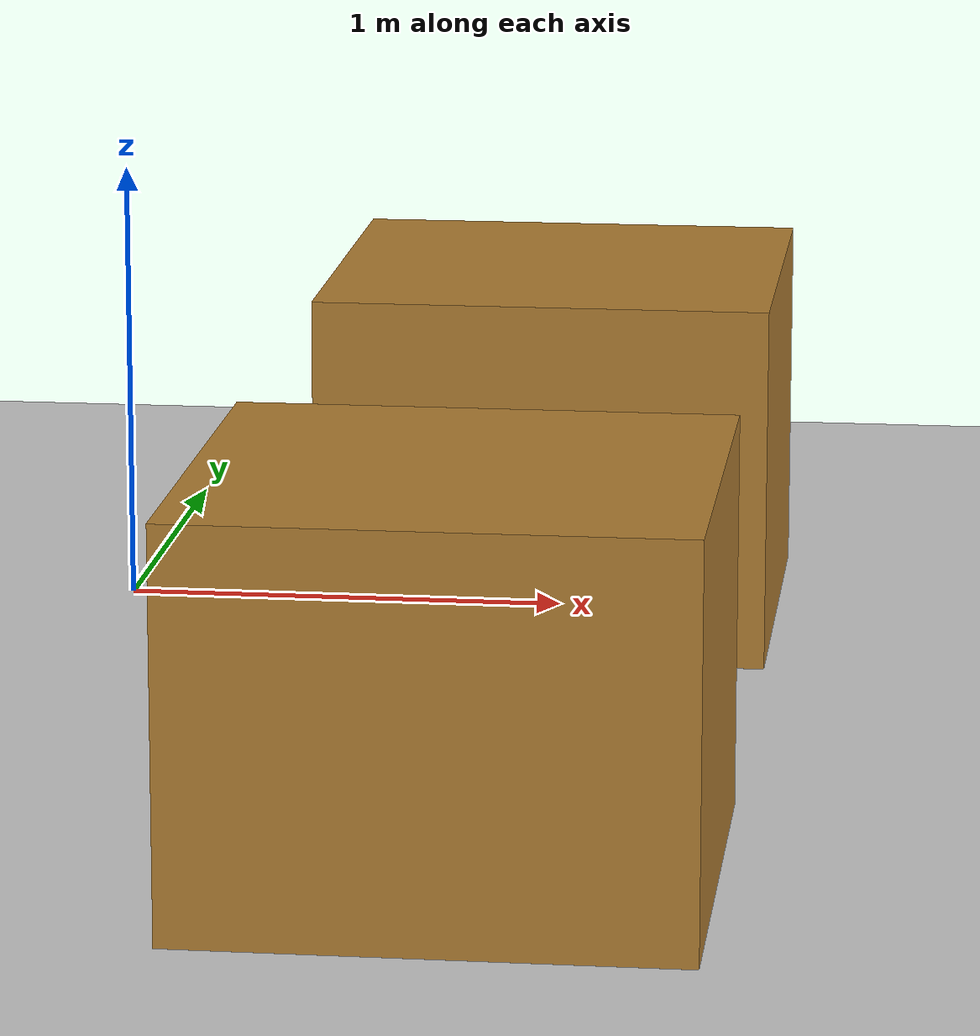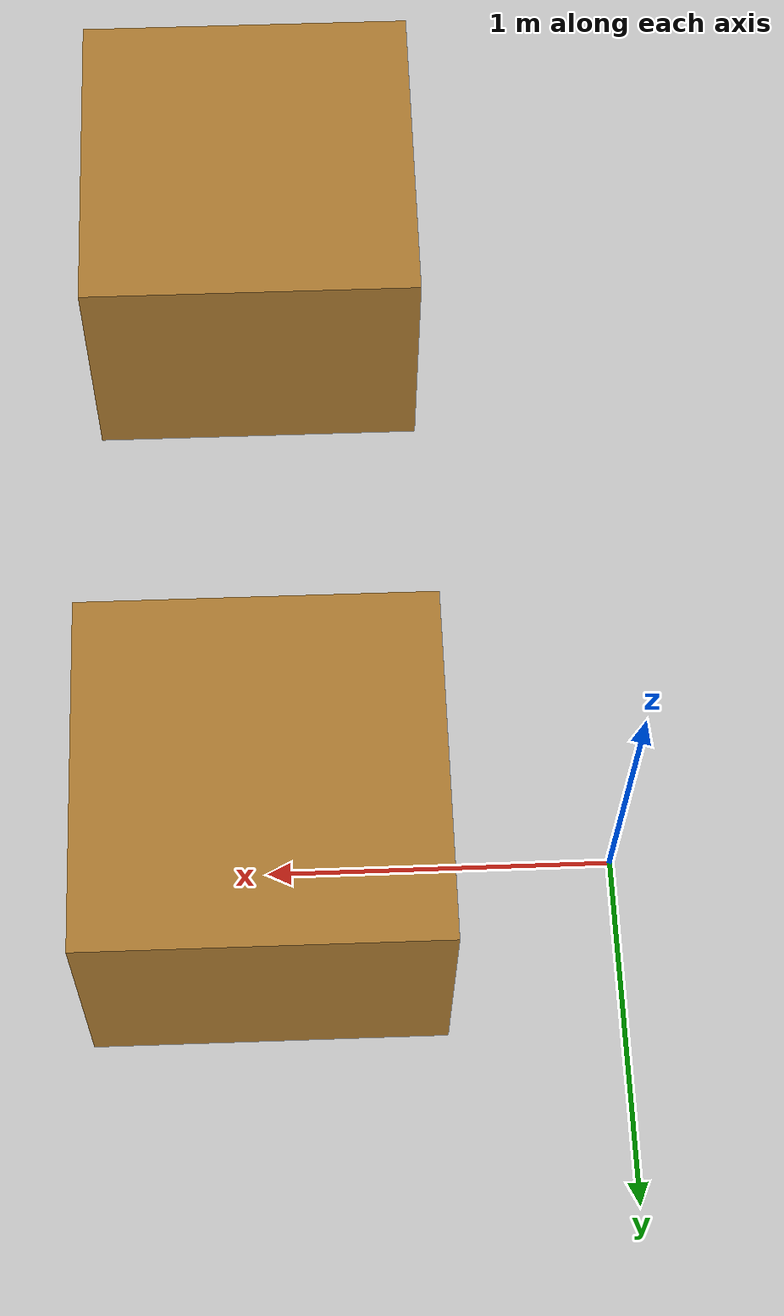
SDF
<?xml version="1.0"?>

<sdf version="1.9">
  <world name="simple_world">

    <!-- Physics engine configuration -->
    <!-- ODE solver: standard choice for robotics -->
    <!-- Real-time simulation: 1000 Hz (1 step every 1ms) -->
    <physics default="0" type="ode">
      <max_step_size>0.001</max_step_size>
      <real_time_update_rate>1000</real_time_update_rate>
      <real_time_factor>1.0</real_time_factor>
    </physics>

    <!-- Gravity: 9.81 m/s^2 downward (negative Z direction) -->
    <gravity>0 0 -9.81</gravity>

    <!-- Ambient properties (affects lighting globally) -->
    <ambient>0.4 0.4 0.4 1</ambient>

    <!-- Sun: directional light simulating sunlight -->
    <!-- Direction: from upper-right to lower-left -->
    <light name="sun" type="directional">
      <cast_shadows>true</cast_shadows>
      <intensity>1</intensity>
      <direction>-0.5 -0.5 -1</direction>
      <ambient>0.4 0.4 0.4 1</ambient>
      <diffuse>0.8 0.8 0.8 1</diffuse>
      <specular>0.8 0.8 0.8 1</specular>
    </light>

    <!-- Ground plane: infinite flat surface -->
    <!-- Static: true means it doesn't move (fixed) -->
    <!-- Visual: gray appearance -->
    <!-- Collision: enabled for physics interactions -->
    <model name="ground_plane">
      <static>true</static>
      <link name="link">
        <collision name="collision">
          <geometry>
            <plane>
              <normal>0 0 1</normal>
              <size>100 100</size>
            </plane>
          </geometry>
        </collision>
        <visual name="visual">
          <geometry>
            <plane>
              <normal>0 0 1</normal>
              <size>100 100</size>
            </plane>
          </geometry>
          <material>
            <ambient>0.8 0.8 0.8 1</ambient>
            <diffuse>0.8 0.8 0.8 1</diffuse>
          </material>
        </visual>
      </link>
    </model>

    <!-- Obstacle 1: Table-like box -->
    <!-- Position: 1 meter forward (Y), 0.4 meters high (Z) -->
    <!-- Size: 1 meter wide (X), 1 meter deep (Y), 0.8 meter tall (Z) -->
    <!-- Static: true means robot can't push it -->
    <model name="obstacle_1">
      <pose>1 0 0.4 0 0 0</pose>
      <static>true</static>
      <link name="link">
        <!-- Collision shape: exactly matching visual -->
        <collision name="collision">
          <geometry>
            <box>
              <size>1 1 0.8</size>
            </box>
          </geometry>
          <surface>
            <friction>
              <ode>
                <mu>0.5</mu>
                <mu2>0.5</mu2>
              </ode>
            </friction>
          </surface>
        </collision>
        <!-- Visual appearance: brown/tan color -->
        <visual name="visual">
          <geometry>
            <box>
              <size>1 1 0.8</size>
            </box>
          </geometry>
          <material>
            <ambient>0.5 0.3 0.1 1</ambient>
            <diffuse>0.7 0.5 0.2 1</diffuse>
            <specular>0.3 0.3 0.3 1</specular>
          </material>
        </visual>
      </link>
    </model>

    <!-- Obstacle 2: Second table-like box -->
    <!-- Position: 1 meter backward (negative Y) -->
    <!-- Otherwise identical to obstacle_1 -->
    <model name="obstacle_2">
      <pose>1 -2 0.4 0 0 0</pose>
      <static>true</static>
      <link name="link">
        <collision name="collision">
          <geometry>
            <box>
              <size>1 1 0.8</size>
            </box>
          </geometry>
          <surface>
            <friction>
              <ode>
                <mu>0.5</mu>
                <mu2>0.5</mu2>
              </ode>
            </friction>
          </surface>
        </collision>
        <visual name="visual">
          <geometry>
            <box>
              <size>1 1 0.8</size>
            </box>
          </geometry>
          <material>
            <ambient>0.5 0.3 0.1 1</ambient>
            <diffuse>0.7 0.5 0.2 1</diffuse>
            <specular>0.3 0.3 0.3 1</specular>
          </material>
        </visual>
      </link>
    </model>

  </world>
</sdf>
